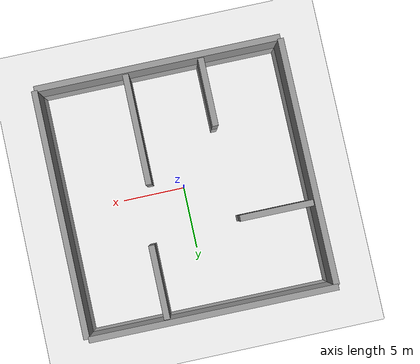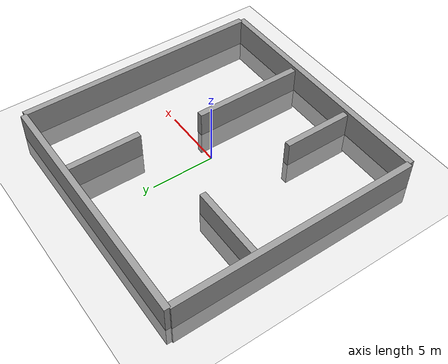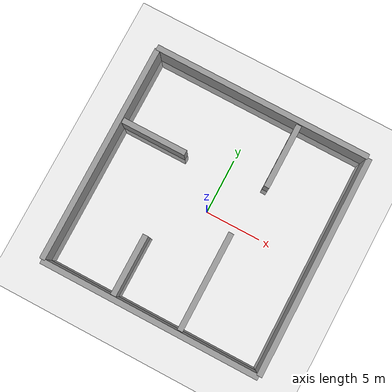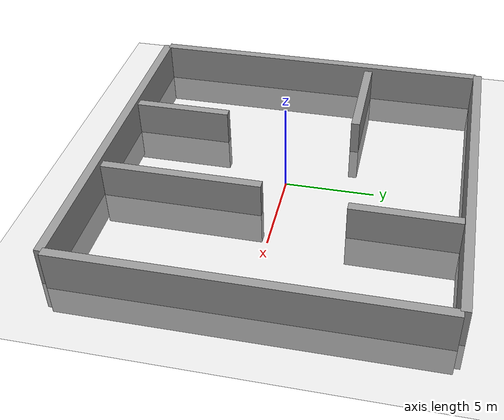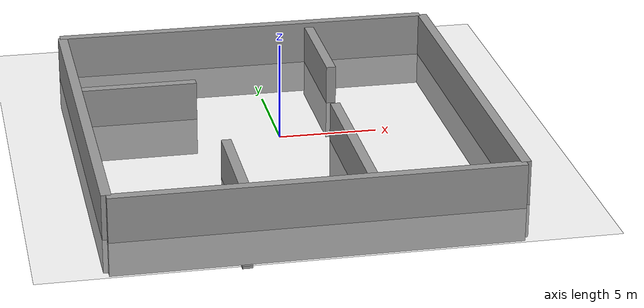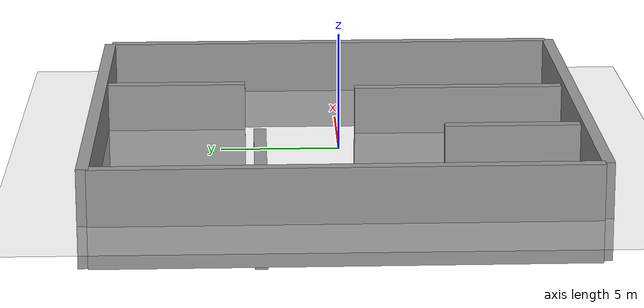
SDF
<sdf version="1.7">
 <world name="default">
  <light name="sun" type="directional">
   <pose>0 0 10 0 -0 0</pose>
   <diffuse>0.8 0.8 0.8 1</diffuse>
   <specular>0.2 0.2 0.2 1</specular>
   <attenuation>
    <range>1000</range>
    <constant>0.9</constant>
    <linear>0.01</linear>
    <quadratic>0.001</quadratic>
   </attenuation>
   <direction>-0.5 0.1 -0.9</direction>
   <spot><inner_angle>0</inner_angle><outer_angle>0</outer_angle><falloff>0</falloff></spot>
  </light>
  <model name="ground_plane">
   <static>1</static>
   <link name="link">
    <collision name="collision">
     <geometry><plane><normal>0 0 1</normal><size>100 100</size></plane></geometry>
     <surface>
      <contact><collide_bitmask>65535</collide_bitmask></contact>
      <friction><ode><mu>0</mu><mu2>0</mu2></ode></friction>
     </surface>
     <max_contacts>50</max_contacts>
    </collision>
    <visual name="visual">
     <cast_shadows>0</cast_shadows>
     <geometry><plane><normal>0 0 1</normal><size>100 100</size></plane></geometry>
     <material>
      <script><uri>file://media/materials/scripts/gazebo.material</uri><name>Gazebo/Grey</name></script>
     </material>
    </visual>
   </link>
  </model>
  <gravity>0 0 -9.8</gravity>
  <magnetic_field>6e-06 2.3e-05 -4.2e-05</magnetic_field>
  <atmosphere type="adiabatic"/>
  <physics type="ode">
   <max_step_size>0.001</max_step_size>
   <real_time_factor>1</real_time_factor>
   <real_time_update_rate>1000</real_time_update_rate>
  </physics>
  <scene><ambient>0.4 0.4 0.4 1</ambient><background>0.7 0.7 0.7 1</background><shadows>1</shadows></scene>
  <spherical_coordinates>
   <surface_model>EARTH_WGS84</surface_model>
   <latitude_deg>0</latitude_deg>
   <longitude_deg>0</longitude_deg>
   <elevation>0</elevation>
   <heading_deg>0</heading_deg>
  </spherical_coordinates>
  <model name="unit_box_wall">
   <link name="link">
    <inertial>
     <mass>1</mass>
     <inertia>
      <ixx>0.166667</ixx>
      <ixy>0</ixy>
      <ixz>0</ixz>
      <iyy>0.166667</iyy>
      <iyz>0</iyz>
      <izz>0.166667</izz>
     </inertia>
    </inertial>
    <visual name="visual">
     <geometry><box><size>0.5 20 4</size></box></geometry>
     <material>
      <script><name>Gazebo/Grey</name><uri>file://media/materials/scripts/gazebo.material</uri></script>
      <shader type="pixel"><normal_map>__default__</normal_map></shader>
      <ambient>0.3 0.3 0.3 1</ambient>
      <diffuse>0.7 0.7 0.7 1</diffuse>
      <specular>0.01 0.01 0.01 1</specular>
      <emissive>0 0 0 1</emissive>
     </material>
    </visual>
    <collision name="collision">
     <max_contacts>50</max_contacts>
     <geometry><box><size>0.5 20 4</size></box></geometry>
     <surface>
      <friction>
       <ode><mu>0</mu><mu2>0</mu2><fdir1>0 0 0</fdir1><slip1>0</slip1><slip2>0</slip2></ode>
       <torsional>
        <coefficient>1</coefficient>
        <patch_radius>0</patch_radius>
        <surface_radius>0</surface_radius>
        <use_patch_radius>1</use_patch_radius>
        <ode><slip>0</slip></ode>
       </torsional>
      </friction>
      <bounce><restitution_coefficient>0</restitution_coefficient><threshold>1e+06</threshold></bounce>
      <contact>
       <collide_without_contact>0</collide_without_contact>
       <collide_without_contact_bitmask>1</collide_without_contact_bitmask>
       <collide_bitmask>1</collide_bitmask>
       <ode>
        <soft_cfm>0</soft_cfm>
        <soft_erp>0.2</soft_erp>
        <kp>1e+13</kp>
        <kd>1</kd>
        <max_vel>0.01</max_vel>
        <min_depth>0</min_depth>
       </ode>
       <bullet>
        <split_impulse>1</split_impulse>
        <split_impulse_penetration_threshold>-0.01</split_impulse_penetration_threshold>
        <soft_cfm>0</soft_cfm>
        <soft_erp>0.2</soft_erp>
        <kp>1e+13</kp>
        <kd>1</kd>
       </bullet>
      </contact>
     </surface>
    </collision>
   </link>
   <static>1</static>
   <pose>-0.00143 -10.0479 0.249978 0 -1.1e-05 1.5707</pose>
  </model>
  <model name="unit_box_wall_clone">
   <link name="link">
    <inertial>
     <mass>1</mass>
     <inertia>
      <ixx>0.166667</ixx>
      <ixy>0</ixy>
      <ixz>0</ixz>
      <iyy>0.166667</iyy>
      <iyz>0</iyz>
      <izz>0.166667</izz>
     </inertia>
    </inertial>
    <visual name="visual">
     <geometry><box><size>0.5 20 4</size></box></geometry>
     <material>
      <script><name>Gazebo/Grey</name><uri>file://media/materials/scripts/gazebo.material</uri></script>
      <shader type="pixel"><normal_map>__default__</normal_map></shader>
      <ambient>0.3 0.3 0.3 1</ambient>
      <diffuse>0.7 0.7 0.7 1</diffuse>
      <specular>0.01 0.01 0.01 1</specular>
      <emissive>0 0 0 1</emissive>
     </material>
    </visual>
    <collision name="collision">
     <max_contacts>50</max_contacts>
     <geometry><box><size>0.5 20 4</size></box></geometry>
     <surface>
      <friction>
       <ode><mu>0</mu><mu2>0</mu2><fdir1>0 0 0</fdir1><slip1>0</slip1><slip2>0</slip2></ode>
       <torsional>
        <coefficient>1</coefficient>
        <patch_radius>0</patch_radius>
        <surface_radius>0</surface_radius>
        <use_patch_radius>1</use_patch_radius>
        <ode><slip>0</slip></ode>
       </torsional>
      </friction>
      <bounce><restitution_coefficient>0</restitution_coefficient><threshold>1e+06</threshold></bounce>
      <contact>
       <collide_without_contact>0</collide_without_contact>
       <collide_without_contact_bitmask>1</collide_without_contact_bitmask>
       <collide_bitmask>1</collide_bitmask>
       <ode>
        <soft_cfm>0</soft_cfm>
        <soft_erp>0.2</soft_erp>
        <kp>1e+13</kp>
        <kd>1</kd>
        <max_vel>0.01</max_vel>
        <min_depth>0</min_depth>
       </ode>
       <bullet>
        <split_impulse>1</split_impulse>
        <split_impulse_penetration_threshold>-0.01</split_impulse_penetration_threshold>
        <soft_cfm>0</soft_cfm>
        <soft_erp>0.2</soft_erp>
        <kp>1e+13</kp>
        <kd>1</kd>
       </bullet>
      </contact>
     </surface>
    </collision>
   </link>
   <static>1</static>
   <pose>9.96152 0.067979 0.24996 1e-05 -0 -3.13792</pose>
  </model>
  <model name="unit_box_wall_clone_clone">
   <link name="link">
    <inertial>
     <mass>1</mass>
     <inertia>
      <ixx>0.166667</ixx>
      <ixy>0</ixy>
      <ixz>0</ixz>
      <iyy>0.166667</iyy>
      <iyz>0</iyz>
      <izz>0.166667</izz>
     </inertia>
    </inertial>
    <visual name="visual">
     <geometry><box><size>0.5 20 4</size></box></geometry>
     <material>
      <script><name>Gazebo/Grey</name><uri>file://media/materials/scripts/gazebo.material</uri></script>
      <shader type="pixel"><normal_map>__default__</normal_map></shader>
      <ambient>0.3 0.3 0.3 1</ambient>
      <diffuse>0.7 0.7 0.7 1</diffuse>
      <specular>0.01 0.01 0.01 1</specular>
      <emissive>0 0 0 1</emissive>
     </material>
    </visual>
    <collision name="collision">
     <max_contacts>50</max_contacts>
     <geometry><box><size>0.5 20 4</size></box></geometry>
     <surface>
      <friction>
       <ode><mu>0</mu><mu2>0</mu2><fdir1>0 0 0</fdir1><slip1>0</slip1><slip2>0</slip2></ode>
       <torsional>
        <coefficient>1</coefficient>
        <patch_radius>0</patch_radius>
        <surface_radius>0</surface_radius>
        <use_patch_radius>1</use_patch_radius>
        <ode><slip>0</slip></ode>
       </torsional>
      </friction>
      <bounce><restitution_coefficient>0</restitution_coefficient><threshold>1e+06</threshold></bounce>
      <contact>
       <collide_without_contact>0</collide_without_contact>
       <collide_without_contact_bitmask>1</collide_without_contact_bitmask>
       <collide_bitmask>1</collide_bitmask>
       <ode>
        <soft_cfm>0</soft_cfm>
        <soft_erp>0.2</soft_erp>
        <kp>1e+13</kp>
        <kd>1</kd>
        <max_vel>0.01</max_vel>
        <min_depth>0</min_depth>
       </ode>
       <bullet>
        <split_impulse>1</split_impulse>
        <split_impulse_penetration_threshold>-0.01</split_impulse_penetration_threshold>
        <soft_cfm>0</soft_cfm>
        <soft_erp>0.2</soft_erp>
        <kp>1e+13</kp>
        <kd>1</kd>
       </bullet>
      </contact>
     </surface>
    </collision>
   </link>
   <static>1</static>
   <pose>-10.0269 0.079367 0.249959 1e-05 -0 -3.13792</pose>
  </model>
  <model name="unit_box_wall_clone_0">
   <link name="link">
    <inertial>
     <mass>1</mass>
     <inertia>
      <ixx>0.166667</ixx>
      <ixy>0</ixy>
      <ixz>0</ixz>
      <iyy>0.166667</iyy>
      <iyz>0</iyz>
      <izz>0.166667</izz>
     </inertia>
    </inertial>
    <visual name="visual">
     <geometry><box><size>0.5 20 4</size></box></geometry>
     <material>
      <script><name>Gazebo/Grey</name><uri>file://media/materials/scripts/gazebo.material</uri></script>
      <shader type="pixel"><normal_map>__default__</normal_map></shader>
      <ambient>0.3 0.3 0.3 1</ambient>
      <diffuse>0.7 0.7 0.7 1</diffuse>
      <specular>0.01 0.01 0.01 1</specular>
      <emissive>0 0 0 1</emissive>
     </material>
    </visual>
    <collision name="collision">
     <max_contacts>50</max_contacts>
     <geometry><box><size>0.5 20 4</size></box></geometry>
     <surface>
      <friction>
       <ode><mu>0</mu><mu2>0</mu2><fdir1>0 0 0</fdir1><slip1>0</slip1><slip2>0</slip2></ode>
       <torsional>
        <coefficient>1</coefficient>
        <patch_radius>0</patch_radius>
        <surface_radius>0</surface_radius>
        <use_patch_radius>1</use_patch_radius>
        <ode><slip>0</slip></ode>
       </torsional>
      </friction>
      <bounce><restitution_coefficient>0</restitution_coefficient><threshold>1e+06</threshold></bounce>
      <contact>
       <collide_without_contact>0</collide_without_contact>
       <collide_without_contact_bitmask>1</collide_without_contact_bitmask>
       <collide_bitmask>1</collide_bitmask>
       <ode>
        <soft_cfm>0</soft_cfm>
        <soft_erp>0.2</soft_erp>
        <kp>1e+13</kp>
        <kd>1</kd>
        <max_vel>0.01</max_vel>
        <min_depth>0</min_depth>
       </ode>
       <bullet>
        <split_impulse>1</split_impulse>
        <split_impulse_penetration_threshold>-0.01</split_impulse_penetration_threshold>
        <soft_cfm>0</soft_cfm>
        <soft_erp>0.2</soft_erp>
        <kp>1e+13</kp>
        <kd>1</kd>
       </bullet>
      </contact>
     </surface>
    </collision>
   </link>
   <static>1</static>
   <pose>-0.200041 10.1854 0.249957 -0 -1e-05 -1.57449</pose>
  </model>
  <model name="unit_box_wall_clone_0_0">
   <link name="link">
    <inertial>
     <mass>1</mass>
     <inertia>
      <ixx>0.166667</ixx>
      <ixy>0</ixy>
      <ixz>0</ixz>
      <iyy>0.166667</iyy>
      <iyz>0</iyz>
      <izz>0.166667</izz>
     </inertia>
    </inertial>
    <visual name="visual">
     <geometry><box><size>0.5 6 4</size></box></geometry>
     <material>
      <script><name>Gazebo/Grey</name><uri>file://media/materials/scripts/gazebo.material</uri></script>
      <shader type="pixel"><normal_map>__default__</normal_map></shader>
      <ambient>0.3 0.3 0.3 1</ambient>
      <diffuse>0.7 0.7 0.7 1</diffuse>
      <specular>0.01 0.01 0.01 1</specular>
      <emissive>0 0 0 1</emissive>
     </material>
    </visual>
    <collision name="collision">
     <max_contacts>50</max_contacts>
     <geometry><box><size>0.5 6 4</size></box></geometry>
     <surface>
      <friction>
       <ode><mu>0</mu><mu2>0</mu2><fdir1>0 0 0</fdir1><slip1>0</slip1><slip2>0</slip2></ode>
       <torsional>
        <coefficient>1</coefficient>
        <patch_radius>0</patch_radius>
        <surface_radius>0</surface_radius>
        <use_patch_radius>1</use_patch_radius>
        <ode><slip>0</slip></ode>
       </torsional>
      </friction>
      <bounce><restitution_coefficient>0</restitution_coefficient><threshold>1e+06</threshold></bounce>
      <contact>
       <collide_without_contact>0</collide_without_contact>
       <collide_without_contact_bitmask>1</collide_without_contact_bitmask>
       <collide_bitmask>1</collide_bitmask>
       <ode>
        <soft_cfm>0</soft_cfm>
        <soft_erp>0.2</soft_erp>
        <kp>1e+13</kp>
        <kd>1</kd>
        <max_vel>0.01</max_vel>
        <min_depth>0</min_depth>
       </ode>
       <bullet>
        <split_impulse>1</split_impulse>
        <split_impulse_penetration_threshold>-0.01</split_impulse_penetration_threshold>
        <soft_cfm>0</soft_cfm>
        <soft_erp>0.2</soft_erp>
        <kp>1e+13</kp>
        <kd>1</kd>
       </bullet>
      </contact>
     </surface>
    </collision>
   </link>
   <static>1</static>
   <pose>3.48281 6.97926 0 0 -0 0</pose>
  </model>
  <model name="unit_box_wall_clone_0_0_clone">
   <link name="link">
    <inertial>
     <mass>1</mass>
     <inertia>
      <ixx>0.166667</ixx>
      <ixy>0</ixy>
      <ixz>0</ixz>
      <iyy>0.166667</iyy>
      <iyz>0</iyz>
      <izz>0.166667</izz>
     </inertia>
    </inertial>
    <visual name="visual">
     <geometry><box><size>0.5 6 4</size></box></geometry>
     <material>
      <script><name>Gazebo/Grey</name><uri>file://media/materials/scripts/gazebo.material</uri></script>
      <shader type="pixel"><normal_map>__default__</normal_map></shader>
      <ambient>0.3 0.3 0.3 1</ambient>
      <diffuse>0.7 0.7 0.7 1</diffuse>
      <specular>0.01 0.01 0.01 1</specular>
      <emissive>0 0 0 1</emissive>
     </material>
    </visual>
    <collision name="collision">
     <max_contacts>50</max_contacts>
     <geometry><box><size>0.5 6 4</size></box></geometry>
     <surface>
      <friction>
       <ode><mu>0</mu><mu2>0</mu2><fdir1>0 0 0</fdir1><slip1>0</slip1><slip2>0</slip2></ode>
       <torsional>
        <coefficient>1</coefficient>
        <patch_radius>0</patch_radius>
        <surface_radius>0</surface_radius>
        <use_patch_radius>1</use_patch_radius>
        <ode><slip>0</slip></ode>
       </torsional>
      </friction>
      <bounce><restitution_coefficient>0</restitution_coefficient><threshold>1e+06</threshold></bounce>
      <contact>
       <collide_without_contact>0</collide_without_contact>
       <collide_without_contact_bitmask>1</collide_without_contact_bitmask>
       <collide_bitmask>1</collide_bitmask>
       <ode>
        <soft_cfm>0</soft_cfm>
        <soft_erp>0.2</soft_erp>
        <kp>1e+13</kp>
        <kd>1</kd>
        <max_vel>0.01</max_vel>
        <min_depth>0</min_depth>
       </ode>
       <bullet>
        <split_impulse>1</split_impulse>
        <split_impulse_penetration_threshold>-0.01</split_impulse_penetration_threshold>
        <soft_cfm>0</soft_cfm>
        <soft_erp>0.2</soft_erp>
        <kp>1e+13</kp>
        <kd>1</kd>
       </bullet>
      </contact>
     </surface>
    </collision>
   </link>
   <static>1</static>
   <pose>-6.81216 3.37715 0 0 -0 1.57</pose>
  </model>
  <model name="unit_box_wall_clone_0_0_clone_0">
   <link name="link">
    <inertial>
     <mass>1</mass>
     <inertia>
      <ixx>0.166667</ixx>
      <ixy>0</ixy>
      <ixz>0</ixz>
      <iyy>0.166667</iyy>
      <iyz>0</iyz>
      <izz>0.166667</izz>
     </inertia>
    </inertial>
    <visual name="visual">
     <geometry><box><size>0.5 6 4</size></box></geometry>
     <material>
      <script><name>Gazebo/Grey</name><uri>file://media/materials/scripts/gazebo.material</uri></script>
      <shader type="pixel"><normal_map>__default__</normal_map></shader>
      <ambient>0.3 0.3 0.3 1</ambient>
      <diffuse>0.7 0.7 0.7 1</diffuse>
      <specular>0.01 0.01 0.01 1</specular>
      <emissive>0 0 0 1</emissive>
     </material>
    </visual>
    <collision name="collision">
     <max_contacts>50</max_contacts>
     <geometry><box><size>0.5 6 4</size></box></geometry>
     <surface>
      <friction>
       <ode><mu>0</mu><mu2>0</mu2><fdir1>0 0 0</fdir1><slip1>0</slip1><slip2>0</slip2></ode>
       <torsional>
        <coefficient>1</coefficient>
        <patch_radius>0</patch_radius>
        <surface_radius>0</surface_radius>
        <use_patch_radius>1</use_patch_radius>
        <ode><slip>0</slip></ode>
       </torsional>
      </friction>
      <bounce><restitution_coefficient>0</restitution_coefficient><threshold>1e+06</threshold></bounce>
      <contact>
       <collide_without_contact>0</collide_without_contact>
       <collide_without_contact_bitmask>1</collide_without_contact_bitmask>
       <collide_bitmask>1</collide_bitmask>
       <ode>
        <soft_cfm>0</soft_cfm>
        <soft_erp>0.2</soft_erp>
        <kp>1e+13</kp>
        <kd>1</kd>
        <max_vel>0.01</max_vel>
        <min_depth>0</min_depth>
       </ode>
       <bullet>
        <split_impulse>1</split_impulse>
        <split_impulse_penetration_threshold>-0.01</split_impulse_penetration_threshold>
        <soft_cfm>0</soft_cfm>
        <soft_erp>0.2</soft_erp>
        <kp>1e+13</kp>
        <kd>1</kd>
       </bullet>
      </contact>
     </surface>
    </collision>
   </link>
   <static>1</static>
   <pose>-3.47838 -7.21819 0 0 -0 0</pose>
  </model>
  <model name="unit_box_wall_clone_0_0_clone_1">
   <link name="link">
    <inertial>
     <mass>1</mass>
     <inertia>
      <ixx>0.166667</ixx>
      <ixy>0</ixy>
      <ixz>0</ixz>
      <iyy>0.166667</iyy>
      <iyz>0</iyz>
      <izz>0.166667</izz>
     </inertia>
    </inertial>
    <visual name="visual">
     <geometry><box><size>0.5 9 4</size></box></geometry>
     <material>
      <script><name>Gazebo/Grey</name><uri>file://media/materials/scripts/gazebo.material</uri></script>
      <shader type="pixel"><normal_map>__default__</normal_map></shader>
      <ambient>0.3 0.3 0.3 1</ambient>
      <diffuse>0.7 0.7 0.7 1</diffuse>
      <specular>0.01 0.01 0.01 1</specular>
      <emissive>0 0 0 1</emissive>
     </material>
    </visual>
    <collision name="collision">
     <max_contacts>50</max_contacts>
     <geometry><box><size>0.5 9 4</size></box></geometry>
     <surface>
      <friction>
       <ode><mu>0</mu><mu2>0</mu2><fdir1>0 0 0</fdir1><slip1>0</slip1><slip2>0</slip2></ode>
       <torsional>
        <coefficient>1</coefficient>
        <patch_radius>0</patch_radius>
        <surface_radius>0</surface_radius>
        <use_patch_radius>1</use_patch_radius>
        <ode><slip>0</slip></ode>
       </torsional>
      </friction>
      <bounce><restitution_coefficient>0</restitution_coefficient><threshold>1e+06</threshold></bounce>
      <contact>
       <collide_without_contact>0</collide_without_contact>
       <collide_without_contact_bitmask>1</collide_without_contact_bitmask>
       <collide_bitmask>1</collide_bitmask>
       <ode>
        <soft_cfm>0</soft_cfm>
        <soft_erp>0.2</soft_erp>
        <kp>1e+13</kp>
        <kd>1</kd>
        <max_vel>0.01</max_vel>
        <min_depth>0</min_depth>
       </ode>
       <bullet>
        <split_impulse>1</split_impulse>
        <split_impulse_penetration_threshold>-0.01</split_impulse_penetration_threshold>
        <soft_cfm>0</soft_cfm>
        <soft_erp>0.2</soft_erp>
        <kp>1e+13</kp>
        <kd>1</kd>
       </bullet>
      </contact>
     </surface>
    </collision>
   </link>
   <static>1</static>
   <pose>2.68281 -5.26626 0 0 -0 0</pose>
  </model>
 </world>
</sdf>
